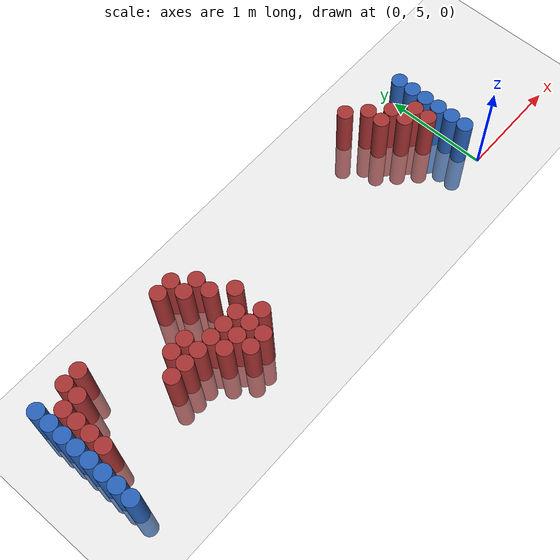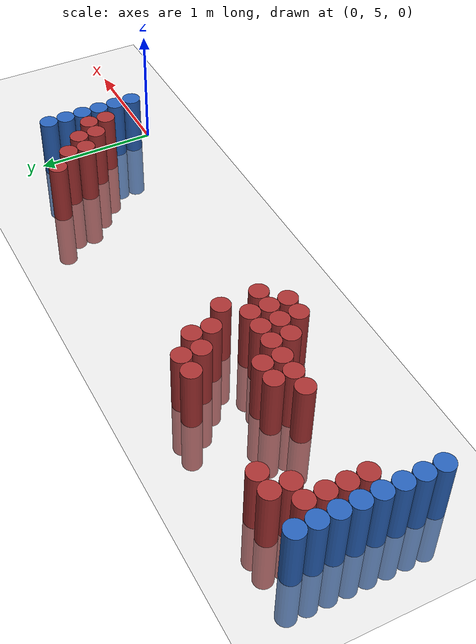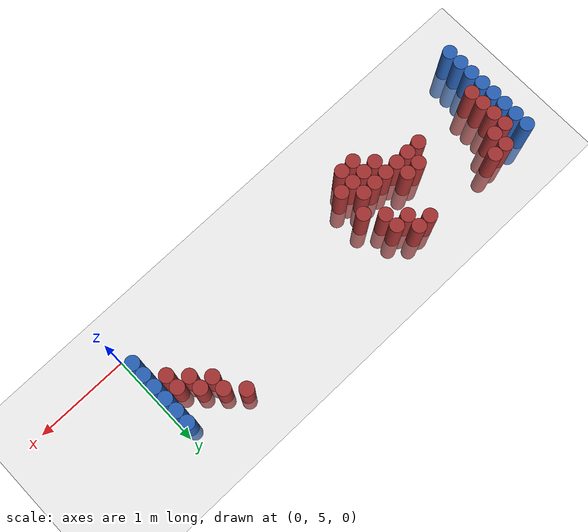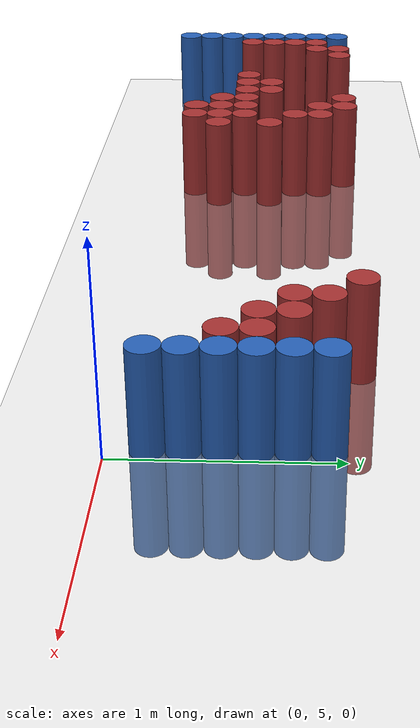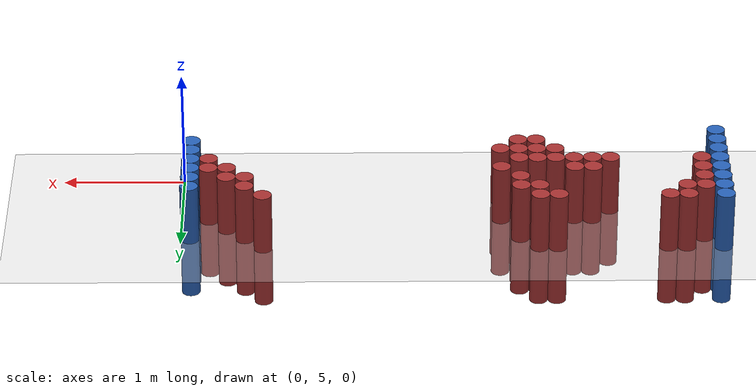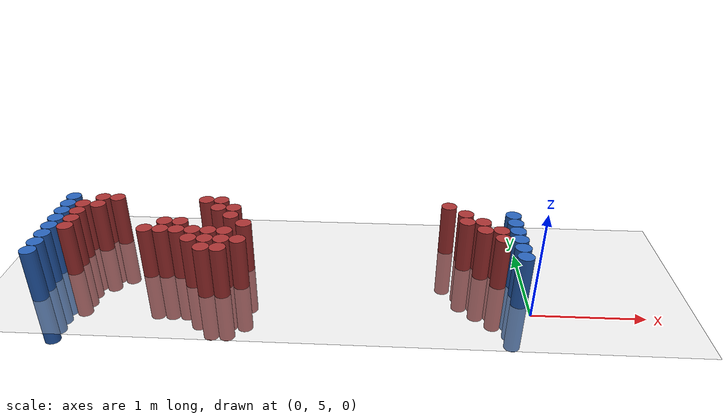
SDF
<sdf version="1.6">
 <world name="default">
  <model name="ground_plane">
   <static>1</static>
   <link name="link">
    <collision name="collision">
     <geometry><plane><normal>0 0 1</normal><size>100 100</size></plane></geometry>
     <surface><friction><ode><mu>100</mu><mu2>50</mu2></ode></friction></surface>
    </collision>
    <visual name="visual">
     <cast_shadows>0</cast_shadows>
     <geometry><plane><normal>0 0 1</normal><size>100 100</size></plane></geometry>
     <material>
      <script><uri>file://media/materials/scripts/gazebo.material</uri><name>Gazebo/Grey</name></script>
     </material>
    </visual>
   </link>
  </model>
  <model name="unit_cylinder_95">
   <static>1</static>
   <pose>-4.425000 5.025000 0.000000 0.000000 0.000000 0.000000</pose>
   <link name="link">
    <inertial>
     <mass>1</mass>
     <inertia><ixx>0.145833</ixx><ixy>0</ixy><ixz>0</ixz><iyy>0.145833</iyy><iyz>0</iyz><izz>0.125</izz></inertia>
    </inertial>
    <collision name="collision">
     <geometry><cylinder><radius>0.075000</radius><length>1</length></cylinder></geometry>
    </collision>
    <visual name="visual">
     <geometry><cylinder><radius>0.075000</radius><length>1</length></cylinder></geometry>
     <material>
      <ambient>0.152000 0.379000 0.720000 1</ambient>
      <diffuse>0.152000 0.379000 0.720000 1</diffuse>
     </material>
     <material>
      <script><name>Gazebo/Grey</name><uri>file://media/materials/scripts/gazebo.material</uri></script>
     </material>
    </visual>
   </link>
  </model>
  <model name="unit_cylinder_96">
   <static>1</static>
   <pose>-4.425000 5.175000 0.000000 0.000000 0.000000 0.000000</pose>
   <link name="link">
    <inertial>
     <mass>1</mass>
     <inertia><ixx>0.145833</ixx><ixy>0</ixy><ixz>0</ixz><iyy>0.145833</iyy><iyz>0</iyz><izz>0.125</izz></inertia>
    </inertial>
    <collision name="collision">
     <geometry><cylinder><radius>0.075000</radius><length>1</length></cylinder></geometry>
    </collision>
    <visual name="visual">
     <geometry><cylinder><radius>0.075000</radius><length>1</length></cylinder></geometry>
     <material>
      <ambient>0.152000 0.379000 0.720000 1</ambient>
      <diffuse>0.152000 0.379000 0.720000 1</diffuse>
     </material>
     <material>
      <script><name>Gazebo/Grey</name><uri>file://media/materials/scripts/gazebo.material</uri></script>
     </material>
    </visual>
   </link>
  </model>
  <model name="unit_cylinder_97">
   <static>1</static>
   <pose>-4.425000 5.325000 0.000000 0.000000 0.000000 0.000000</pose>
   <link name="link">
    <inertial>
     <mass>1</mass>
     <inertia><ixx>0.145833</ixx><ixy>0</ixy><ixz>0</ixz><iyy>0.145833</iyy><iyz>0</iyz><izz>0.125</izz></inertia>
    </inertial>
    <collision name="collision">
     <geometry><cylinder><radius>0.075000</radius><length>1</length></cylinder></geometry>
    </collision>
    <visual name="visual">
     <geometry><cylinder><radius>0.075000</radius><length>1</length></cylinder></geometry>
     <material>
      <ambient>0.152000 0.379000 0.720000 1</ambient>
      <diffuse>0.152000 0.379000 0.720000 1</diffuse>
     </material>
     <material>
      <script><name>Gazebo/Grey</name><uri>file://media/materials/scripts/gazebo.material</uri></script>
     </material>
    </visual>
   </link>
  </model>
  <model name="unit_cylinder_98">
   <static>1</static>
   <pose>-4.425000 5.475000 0.000000 0.000000 0.000000 0.000000</pose>
   <link name="link">
    <inertial>
     <mass>1</mass>
     <inertia><ixx>0.145833</ixx><ixy>0</ixy><ixz>0</ixz><iyy>0.145833</iyy><iyz>0</iyz><izz>0.125</izz></inertia>
    </inertial>
    <collision name="collision">
     <geometry><cylinder><radius>0.075000</radius><length>1</length></cylinder></geometry>
    </collision>
    <visual name="visual">
     <geometry><cylinder><radius>0.075000</radius><length>1</length></cylinder></geometry>
     <material>
      <ambient>0.152000 0.379000 0.720000 1</ambient>
      <diffuse>0.152000 0.379000 0.720000 1</diffuse>
     </material>
     <material>
      <script><name>Gazebo/Grey</name><uri>file://media/materials/scripts/gazebo.material</uri></script>
     </material>
    </visual>
   </link>
  </model>
  <model name="unit_cylinder_99">
   <static>1</static>
   <pose>-4.425000 5.625000 0.000000 0.000000 0.000000 0.000000</pose>
   <link name="link">
    <inertial>
     <mass>1</mass>
     <inertia><ixx>0.145833</ixx><ixy>0</ixy><ixz>0</ixz><iyy>0.145833</iyy><iyz>0</iyz><izz>0.125</izz></inertia>
    </inertial>
    <collision name="collision">
     <geometry><cylinder><radius>0.075000</radius><length>1</length></cylinder></geometry>
    </collision>
    <visual name="visual">
     <geometry><cylinder><radius>0.075000</radius><length>1</length></cylinder></geometry>
     <material>
      <ambient>0.152000 0.379000 0.720000 1</ambient>
      <diffuse>0.152000 0.379000 0.720000 1</diffuse>
     </material>
     <material>
      <script><name>Gazebo/Grey</name><uri>file://media/materials/scripts/gazebo.material</uri></script>
     </material>
    </visual>
   </link>
  </model>
  <model name="unit_cylinder_100">
   <static>1</static>
   <pose>-4.425000 5.775000 0.000000 0.000000 0.000000 0.000000</pose>
   <link name="link">
    <inertial>
     <mass>1</mass>
     <inertia><ixx>0.145833</ixx><ixy>0</ixy><ixz>0</ixz><iyy>0.145833</iyy><iyz>0</iyz><izz>0.125</izz></inertia>
    </inertial>
    <collision name="collision">
     <geometry><cylinder><radius>0.075000</radius><length>1</length></cylinder></geometry>
    </collision>
    <visual name="visual">
     <geometry><cylinder><radius>0.075000</radius><length>1</length></cylinder></geometry>
     <material>
      <ambient>0.152000 0.379000 0.720000 1</ambient>
      <diffuse>0.152000 0.379000 0.720000 1</diffuse>
     </material>
     <material>
      <script><name>Gazebo/Grey</name><uri>file://media/materials/scripts/gazebo.material</uri></script>
     </material>
    </visual>
   </link>
  </model>
  <model name="unit_cylinder_101">
   <static>1</static>
   <pose>-4.425000 5.925000 0.000000 0.000000 0.000000 0.000000</pose>
   <link name="link">
    <inertial>
     <mass>1</mass>
     <inertia><ixx>0.145833</ixx><ixy>0</ixy><ixz>0</ixz><iyy>0.145833</iyy><iyz>0</iyz><izz>0.125</izz></inertia>
    </inertial>
    <collision name="collision">
     <geometry><cylinder><radius>0.075000</radius><length>1</length></cylinder></geometry>
    </collision>
    <visual name="visual">
     <geometry><cylinder><radius>0.075000</radius><length>1</length></cylinder></geometry>
     <material>
      <ambient>0.152000 0.379000 0.720000 1</ambient>
      <diffuse>0.152000 0.379000 0.720000 1</diffuse>
     </material>
     <material>
      <script><name>Gazebo/Grey</name><uri>file://media/materials/scripts/gazebo.material</uri></script>
     </material>
    </visual>
   </link>
  </model>
  <model name="unit_cylinder_102">
   <static>1</static>
   <pose>-4.425000 6.075000 0.000000 0.000000 0.000000 0.000000</pose>
   <link name="link">
    <inertial>
     <mass>1</mass>
     <inertia><ixx>0.145833</ixx><ixy>0</ixy><ixz>0</ixz><iyy>0.145833</iyy><iyz>0</iyz><izz>0.125</izz></inertia>
    </inertial>
    <collision name="collision">
     <geometry><cylinder><radius>0.075000</radius><length>1</length></cylinder></geometry>
    </collision>
    <visual name="visual">
     <geometry><cylinder><radius>0.075000</radius><length>1</length></cylinder></geometry>
     <material>
      <ambient>0.152000 0.379000 0.720000 1</ambient>
      <diffuse>0.152000 0.379000 0.720000 1</diffuse>
     </material>
     <material>
      <script><name>Gazebo/Grey</name><uri>file://media/materials/scripts/gazebo.material</uri></script>
     </material>
    </visual>
   </link>
  </model>
  <model name="unit_cylinder_126">
   <static>1</static>
   <pose>-4.275000 5.475000 0.000000 0.000000 0.000000 0.000000</pose>
   <link name="link">
    <inertial>
     <mass>1</mass>
     <inertia><ixx>0.145833</ixx><ixy>0</ixy><ixz>0</ixz><iyy>0.145833</iyy><iyz>0</iyz><izz>0.125</izz></inertia>
    </inertial>
    <collision name="collision">
     <geometry><cylinder><radius>0.075000</radius><length>1</length></cylinder></geometry>
    </collision>
    <visual name="visual">
     <geometry><cylinder><radius>0.075000</radius><length>1</length></cylinder></geometry>
     <material>
      <ambient>0.648000 0.192000 0.192000 1</ambient>
      <diffuse>0.648000 0.192000 0.192000 1</diffuse>
     </material>
     <material>
      <script><name>Gazebo/Grey</name><uri>file://media/materials/scripts/gazebo.material</uri></script>
     </material>
    </visual>
   </link>
  </model>
  <model name="unit_cylinder_127">
   <static>1</static>
   <pose>-4.275000 5.625000 0.000000 0.000000 0.000000 0.000000</pose>
   <link name="link">
    <inertial>
     <mass>1</mass>
     <inertia><ixx>0.145833</ixx><ixy>0</ixy><ixz>0</ixz><iyy>0.145833</iyy><iyz>0</iyz><izz>0.125</izz></inertia>
    </inertial>
    <collision name="collision">
     <geometry><cylinder><radius>0.075000</radius><length>1</length></cylinder></geometry>
    </collision>
    <visual name="visual">
     <geometry><cylinder><radius>0.075000</radius><length>1</length></cylinder></geometry>
     <material>
      <ambient>0.648000 0.192000 0.192000 1</ambient>
      <diffuse>0.648000 0.192000 0.192000 1</diffuse>
     </material>
     <material>
      <script><name>Gazebo/Grey</name><uri>file://media/materials/scripts/gazebo.material</uri></script>
     </material>
    </visual>
   </link>
  </model>
  <model name="unit_cylinder_128">
   <static>1</static>
   <pose>-4.275000 5.775000 0.000000 0.000000 0.000000 0.000000</pose>
   <link name="link">
    <inertial>
     <mass>1</mass>
     <inertia><ixx>0.145833</ixx><ixy>0</ixy><ixz>0</ixz><iyy>0.145833</iyy><iyz>0</iyz><izz>0.125</izz></inertia>
    </inertial>
    <collision name="collision">
     <geometry><cylinder><radius>0.075000</radius><length>1</length></cylinder></geometry>
    </collision>
    <visual name="visual">
     <geometry><cylinder><radius>0.075000</radius><length>1</length></cylinder></geometry>
     <material>
      <ambient>0.648000 0.192000 0.192000 1</ambient>
      <diffuse>0.648000 0.192000 0.192000 1</diffuse>
     </material>
     <material>
      <script><name>Gazebo/Grey</name><uri>file://media/materials/scripts/gazebo.material</uri></script>
     </material>
    </visual>
   </link>
  </model>
  <model name="unit_cylinder_129">
   <static>1</static>
   <pose>-4.275000 5.925000 0.000000 0.000000 0.000000 0.000000</pose>
   <link name="link">
    <inertial>
     <mass>1</mass>
     <inertia><ixx>0.145833</ixx><ixy>0</ixy><ixz>0</ixz><iyy>0.145833</iyy><iyz>0</iyz><izz>0.125</izz></inertia>
    </inertial>
    <collision name="collision">
     <geometry><cylinder><radius>0.075000</radius><length>1</length></cylinder></geometry>
    </collision>
    <visual name="visual">
     <geometry><cylinder><radius>0.075000</radius><length>1</length></cylinder></geometry>
     <material>
      <ambient>0.648000 0.192000 0.192000 1</ambient>
      <diffuse>0.648000 0.192000 0.192000 1</diffuse>
     </material>
     <material>
      <script><name>Gazebo/Grey</name><uri>file://media/materials/scripts/gazebo.material</uri></script>
     </material>
    </visual>
   </link>
  </model>
  <model name="unit_cylinder_140">
   <static>1</static>
   <pose>-4.125000 5.925000 0.000000 0.000000 0.000000 0.000000</pose>
   <link name="link">
    <inertial>
     <mass>1</mass>
     <inertia><ixx>0.145833</ixx><ixy>0</ixy><ixz>0</ixz><iyy>0.145833</iyy><iyz>0</iyz><izz>0.125</izz></inertia>
    </inertial>
    <collision name="collision">
     <geometry><cylinder><radius>0.075000</radius><length>1</length></cylinder></geometry>
    </collision>
    <visual name="visual">
     <geometry><cylinder><radius>0.075000</radius><length>1</length></cylinder></geometry>
     <material>
      <ambient>0.648000 0.192000 0.192000 1</ambient>
      <diffuse>0.648000 0.192000 0.192000 1</diffuse>
     </material>
     <material>
      <script><name>Gazebo/Grey</name><uri>file://media/materials/scripts/gazebo.material</uri></script>
     </material>
    </visual>
   </link>
  </model>
  <model name="unit_cylinder_141">
   <static>1</static>
   <pose>-4.125000 6.075000 0.000000 0.000000 0.000000 0.000000</pose>
   <link name="link">
    <inertial>
     <mass>1</mass>
     <inertia><ixx>0.145833</ixx><ixy>0</ixy><ixz>0</ixz><iyy>0.145833</iyy><iyz>0</iyz><izz>0.125</izz></inertia>
    </inertial>
    <collision name="collision">
     <geometry><cylinder><radius>0.075000</radius><length>1</length></cylinder></geometry>
    </collision>
    <visual name="visual">
     <geometry><cylinder><radius>0.075000</radius><length>1</length></cylinder></geometry>
     <material>
      <ambient>0.648000 0.192000 0.192000 1</ambient>
      <diffuse>0.648000 0.192000 0.192000 1</diffuse>
     </material>
     <material>
      <script><name>Gazebo/Grey</name><uri>file://media/materials/scripts/gazebo.material</uri></script>
     </material>
    </visual>
   </link>
  </model>
  <model name="unit_cylinder_147">
   <static>1</static>
   <pose>-3.975000 6.075000 0.000000 0.000000 0.000000 0.000000</pose>
   <link name="link">
    <inertial>
     <mass>1</mass>
     <inertia><ixx>0.145833</ixx><ixy>0</ixy><ixz>0</ixz><iyy>0.145833</iyy><iyz>0</iyz><izz>0.125</izz></inertia>
    </inertial>
    <collision name="collision">
     <geometry><cylinder><radius>0.075000</radius><length>1</length></cylinder></geometry>
    </collision>
    <visual name="visual">
     <geometry><cylinder><radius>0.075000</radius><length>1</length></cylinder></geometry>
     <material>
      <ambient>0.648000 0.192000 0.192000 1</ambient>
      <diffuse>0.648000 0.192000 0.192000 1</diffuse>
     </material>
     <material>
      <script><name>Gazebo/Grey</name><uri>file://media/materials/scripts/gazebo.material</uri></script>
     </material>
    </visual>
   </link>
  </model>
  <model name="unit_cylinder_170">
   <static>1</static>
   <pose>-3.525000 5.475000 0.000000 0.000000 0.000000 0.000000</pose>
   <link name="link">
    <inertial>
     <mass>1</mass>
     <inertia><ixx>0.145833</ixx><ixy>0</ixy><ixz>0</ixz><iyy>0.145833</iyy><iyz>0</iyz><izz>0.125</izz></inertia>
    </inertial>
    <collision name="collision">
     <geometry><cylinder><radius>0.075000</radius><length>1</length></cylinder></geometry>
    </collision>
    <visual name="visual">
     <geometry><cylinder><radius>0.075000</radius><length>1</length></cylinder></geometry>
     <material>
      <ambient>0.648000 0.192000 0.192000 1</ambient>
      <diffuse>0.648000 0.192000 0.192000 1</diffuse>
     </material>
     <material>
      <script><name>Gazebo/Grey</name><uri>file://media/materials/scripts/gazebo.material</uri></script>
     </material>
    </visual>
   </link>
  </model>
  <model name="unit_cylinder_176">
   <static>1</static>
   <pose>-3.375000 5.475000 0.000000 0.000000 0.000000 0.000000</pose>
   <link name="link">
    <inertial>
     <mass>1</mass>
     <inertia><ixx>0.145833</ixx><ixy>0</ixy><ixz>0</ixz><iyy>0.145833</iyy><iyz>0</iyz><izz>0.125</izz></inertia>
    </inertial>
    <collision name="collision">
     <geometry><cylinder><radius>0.075000</radius><length>1</length></cylinder></geometry>
    </collision>
    <visual name="visual">
     <geometry><cylinder><radius>0.075000</radius><length>1</length></cylinder></geometry>
     <material>
      <ambient>0.648000 0.192000 0.192000 1</ambient>
      <diffuse>0.648000 0.192000 0.192000 1</diffuse>
     </material>
     <material>
      <script><name>Gazebo/Grey</name><uri>file://media/materials/scripts/gazebo.material</uri></script>
     </material>
    </visual>
   </link>
  </model>
  <model name="unit_cylinder_177">
   <static>1</static>
   <pose>-3.375000 5.625000 0.000000 0.000000 0.000000 0.000000</pose>
   <link name="link">
    <inertial>
     <mass>1</mass>
     <inertia><ixx>0.145833</ixx><ixy>0</ixy><ixz>0</ixz><iyy>0.145833</iyy><iyz>0</iyz><izz>0.125</izz></inertia>
    </inertial>
    <collision name="collision">
     <geometry><cylinder><radius>0.075000</radius><length>1</length></cylinder></geometry>
    </collision>
    <visual name="visual">
     <geometry><cylinder><radius>0.075000</radius><length>1</length></cylinder></geometry>
     <material>
      <ambient>0.648000 0.192000 0.192000 1</ambient>
      <diffuse>0.648000 0.192000 0.192000 1</diffuse>
     </material>
     <material>
      <script><name>Gazebo/Grey</name><uri>file://media/materials/scripts/gazebo.material</uri></script>
     </material>
    </visual>
   </link>
  </model>
  <model name="unit_cylinder_185">
   <static>1</static>
   <pose>-3.225000 5.475000 0.000000 0.000000 0.000000 0.000000</pose>
   <link name="link">
    <inertial>
     <mass>1</mass>
     <inertia><ixx>0.145833</ixx><ixy>0</ixy><ixz>0</ixz><iyy>0.145833</iyy><iyz>0</iyz><izz>0.125</izz></inertia>
    </inertial>
    <collision name="collision">
     <geometry><cylinder><radius>0.075000</radius><length>1</length></cylinder></geometry>
    </collision>
    <visual name="visual">
     <geometry><cylinder><radius>0.075000</radius><length>1</length></cylinder></geometry>
     <material>
      <ambient>0.648000 0.192000 0.192000 1</ambient>
      <diffuse>0.648000 0.192000 0.192000 1</diffuse>
     </material>
     <material>
      <script><name>Gazebo/Grey</name><uri>file://media/materials/scripts/gazebo.material</uri></script>
     </material>
    </visual>
   </link>
  </model>
  <model name="unit_cylinder_186">
   <static>1</static>
   <pose>-3.225000 5.625000 0.000000 0.000000 0.000000 0.000000</pose>
   <link name="link">
    <inertial>
     <mass>1</mass>
     <inertia><ixx>0.145833</ixx><ixy>0</ixy><ixz>0</ixz><iyy>0.145833</iyy><iyz>0</iyz><izz>0.125</izz></inertia>
    </inertial>
    <collision name="collision">
     <geometry><cylinder><radius>0.075000</radius><length>1</length></cylinder></geometry>
    </collision>
    <visual name="visual">
     <geometry><cylinder><radius>0.075000</radius><length>1</length></cylinder></geometry>
     <material>
      <ambient>0.648000 0.192000 0.192000 1</ambient>
      <diffuse>0.648000 0.192000 0.192000 1</diffuse>
     </material>
     <material>
      <script><name>Gazebo/Grey</name><uri>file://media/materials/scripts/gazebo.material</uri></script>
     </material>
    </visual>
   </link>
  </model>
  <model name="unit_cylinder_192">
   <static>1</static>
   <pose>-3.075000 5.325000 0.000000 0.000000 0.000000 0.000000</pose>
   <link name="link">
    <inertial>
     <mass>1</mass>
     <inertia><ixx>0.145833</ixx><ixy>0</ixy><ixz>0</ixz><iyy>0.145833</iyy><iyz>0</iyz><izz>0.125</izz></inertia>
    </inertial>
    <collision name="collision">
     <geometry><cylinder><radius>0.075000</radius><length>1</length></cylinder></geometry>
    </collision>
    <visual name="visual">
     <geometry><cylinder><radius>0.075000</radius><length>1</length></cylinder></geometry>
     <material>
      <ambient>0.648000 0.192000 0.192000 1</ambient>
      <diffuse>0.648000 0.192000 0.192000 1</diffuse>
     </material>
     <material>
      <script><name>Gazebo/Grey</name><uri>file://media/materials/scripts/gazebo.material</uri></script>
     </material>
    </visual>
   </link>
  </model>
  <model name="unit_cylinder_193">
   <static>1</static>
   <pose>-3.075000 5.475000 0.000000 0.000000 0.000000 0.000000</pose>
   <link name="link">
    <inertial>
     <mass>1</mass>
     <inertia><ixx>0.145833</ixx><ixy>0</ixy><ixz>0</ixz><iyy>0.145833</iyy><iyz>0</iyz><izz>0.125</izz></inertia>
    </inertial>
    <collision name="collision">
     <geometry><cylinder><radius>0.075000</radius><length>1</length></cylinder></geometry>
    </collision>
    <visual name="visual">
     <geometry><cylinder><radius>0.075000</radius><length>1</length></cylinder></geometry>
     <material>
      <ambient>0.648000 0.192000 0.192000 1</ambient>
      <diffuse>0.648000 0.192000 0.192000 1</diffuse>
     </material>
     <material>
      <script><name>Gazebo/Grey</name><uri>file://media/materials/scripts/gazebo.material</uri></script>
     </material>
    </visual>
   </link>
  </model>
  <model name="unit_cylinder_194">
   <static>1</static>
   <pose>-3.075000 6.075000 0.000000 0.000000 0.000000 0.000000</pose>
   <link name="link">
    <inertial>
     <mass>1</mass>
     <inertia><ixx>0.145833</ixx><ixy>0</ixy><ixz>0</ixz><iyy>0.145833</iyy><iyz>0</iyz><izz>0.125</izz></inertia>
    </inertial>
    <collision name="collision">
     <geometry><cylinder><radius>0.075000</radius><length>1</length></cylinder></geometry>
    </collision>
    <visual name="visual">
     <geometry><cylinder><radius>0.075000</radius><length>1</length></cylinder></geometry>
     <material>
      <ambient>0.648000 0.192000 0.192000 1</ambient>
      <diffuse>0.648000 0.192000 0.192000 1</diffuse>
     </material>
     <material>
      <script><name>Gazebo/Grey</name><uri>file://media/materials/scripts/gazebo.material</uri></script>
     </material>
    </visual>
   </link>
  </model>
  <model name="unit_cylinder_198">
   <static>1</static>
   <pose>-2.925000 5.175000 0.000000 0.000000 0.000000 0.000000</pose>
   <link name="link">
    <inertial>
     <mass>1</mass>
     <inertia><ixx>0.145833</ixx><ixy>0</ixy><ixz>0</ixz><iyy>0.145833</iyy><iyz>0</iyz><izz>0.125</izz></inertia>
    </inertial>
    <collision name="collision">
     <geometry><cylinder><radius>0.075000</radius><length>1</length></cylinder></geometry>
    </collision>
    <visual name="visual">
     <geometry><cylinder><radius>0.075000</radius><length>1</length></cylinder></geometry>
     <material>
      <ambient>0.648000 0.192000 0.192000 1</ambient>
      <diffuse>0.648000 0.192000 0.192000 1</diffuse>
     </material>
     <material>
      <script><name>Gazebo/Grey</name><uri>file://media/materials/scripts/gazebo.material</uri></script>
     </material>
    </visual>
   </link>
  </model>
  <model name="unit_cylinder_199">
   <static>1</static>
   <pose>-2.925000 5.325000 0.000000 0.000000 0.000000 0.000000</pose>
   <link name="link">
    <inertial>
     <mass>1</mass>
     <inertia><ixx>0.145833</ixx><ixy>0</ixy><ixz>0</ixz><iyy>0.145833</iyy><iyz>0</iyz><izz>0.125</izz></inertia>
    </inertial>
    <collision name="collision">
     <geometry><cylinder><radius>0.075000</radius><length>1</length></cylinder></geometry>
    </collision>
    <visual name="visual">
     <geometry><cylinder><radius>0.075000</radius><length>1</length></cylinder></geometry>
     <material>
      <ambient>0.648000 0.192000 0.192000 1</ambient>
      <diffuse>0.648000 0.192000 0.192000 1</diffuse>
     </material>
     <material>
      <script><name>Gazebo/Grey</name><uri>file://media/materials/scripts/gazebo.material</uri></script>
     </material>
    </visual>
   </link>
  </model>
  <model name="unit_cylinder_200">
   <static>1</static>
   <pose>-2.925000 5.475000 0.000000 0.000000 0.000000 0.000000</pose>
   <link name="link">
    <inertial>
     <mass>1</mass>
     <inertia><ixx>0.145833</ixx><ixy>0</ixy><ixz>0</ixz><iyy>0.145833</iyy><iyz>0</iyz><izz>0.125</izz></inertia>
    </inertial>
    <collision name="collision">
     <geometry><cylinder><radius>0.075000</radius><length>1</length></cylinder></geometry>
    </collision>
    <visual name="visual">
     <geometry><cylinder><radius>0.075000</radius><length>1</length></cylinder></geometry>
     <material>
      <ambient>0.648000 0.192000 0.192000 1</ambient>
      <diffuse>0.648000 0.192000 0.192000 1</diffuse>
     </material>
     <material>
      <script><name>Gazebo/Grey</name><uri>file://media/materials/scripts/gazebo.material</uri></script>
     </material>
    </visual>
   </link>
  </model>
  <model name="unit_cylinder_201">
   <static>1</static>
   <pose>-2.925000 5.925000 0.000000 0.000000 0.000000 0.000000</pose>
   <link name="link">
    <inertial>
     <mass>1</mass>
     <inertia><ixx>0.145833</ixx><ixy>0</ixy><ixz>0</ixz><iyy>0.145833</iyy><iyz>0</iyz><izz>0.125</izz></inertia>
    </inertial>
    <collision name="collision">
     <geometry><cylinder><radius>0.075000</radius><length>1</length></cylinder></geometry>
    </collision>
    <visual name="visual">
     <geometry><cylinder><radius>0.075000</radius><length>1</length></cylinder></geometry>
     <material>
      <ambient>0.648000 0.192000 0.192000 1</ambient>
      <diffuse>0.648000 0.192000 0.192000 1</diffuse>
     </material>
     <material>
      <script><name>Gazebo/Grey</name><uri>file://media/materials/scripts/gazebo.material</uri></script>
     </material>
    </visual>
   </link>
  </model>
  <model name="unit_cylinder_202">
   <static>1</static>
   <pose>-2.925000 6.075000 0.000000 0.000000 0.000000 0.000000</pose>
   <link name="link">
    <inertial>
     <mass>1</mass>
     <inertia><ixx>0.145833</ixx><ixy>0</ixy><ixz>0</ixz><iyy>0.145833</iyy><iyz>0</iyz><izz>0.125</izz></inertia>
    </inertial>
    <collision name="collision">
     <geometry><cylinder><radius>0.075000</radius><length>1</length></cylinder></geometry>
    </collision>
    <visual name="visual">
     <geometry><cylinder><radius>0.075000</radius><length>1</length></cylinder></geometry>
     <material>
      <ambient>0.648000 0.192000 0.192000 1</ambient>
      <diffuse>0.648000 0.192000 0.192000 1</diffuse>
     </material>
     <material>
      <script><name>Gazebo/Grey</name><uri>file://media/materials/scripts/gazebo.material</uri></script>
     </material>
    </visual>
   </link>
  </model>
  <model name="unit_cylinder_208">
   <static>1</static>
   <pose>-2.775000 5.175000 0.000000 0.000000 0.000000 0.000000</pose>
   <link name="link">
    <inertial>
     <mass>1</mass>
     <inertia><ixx>0.145833</ixx><ixy>0</ixy><ixz>0</ixz><iyy>0.145833</iyy><iyz>0</iyz><izz>0.125</izz></inertia>
    </inertial>
    <collision name="collision">
     <geometry><cylinder><radius>0.075000</radius><length>1</length></cylinder></geometry>
    </collision>
    <visual name="visual">
     <geometry><cylinder><radius>0.075000</radius><length>1</length></cylinder></geometry>
     <material>
      <ambient>0.648000 0.192000 0.192000 1</ambient>
      <diffuse>0.648000 0.192000 0.192000 1</diffuse>
     </material>
     <material>
      <script><name>Gazebo/Grey</name><uri>file://media/materials/scripts/gazebo.material</uri></script>
     </material>
    </visual>
   </link>
  </model>
  <model name="unit_cylinder_209">
   <static>1</static>
   <pose>-2.775000 5.325000 0.000000 0.000000 0.000000 0.000000</pose>
   <link name="link">
    <inertial>
     <mass>1</mass>
     <inertia><ixx>0.145833</ixx><ixy>0</ixy><ixz>0</ixz><iyy>0.145833</iyy><iyz>0</iyz><izz>0.125</izz></inertia>
    </inertial>
    <collision name="collision">
     <geometry><cylinder><radius>0.075000</radius><length>1</length></cylinder></geometry>
    </collision>
    <visual name="visual">
     <geometry><cylinder><radius>0.075000</radius><length>1</length></cylinder></geometry>
     <material>
      <ambient>0.648000 0.192000 0.192000 1</ambient>
      <diffuse>0.648000 0.192000 0.192000 1</diffuse>
     </material>
     <material>
      <script><name>Gazebo/Grey</name><uri>file://media/materials/scripts/gazebo.material</uri></script>
     </material>
    </visual>
   </link>
  </model>
  <model name="unit_cylinder_210">
   <static>1</static>
   <pose>-2.775000 5.475000 0.000000 0.000000 0.000000 0.000000</pose>
   <link name="link">
    <inertial>
     <mass>1</mass>
     <inertia><ixx>0.145833</ixx><ixy>0</ixy><ixz>0</ixz><iyy>0.145833</iyy><iyz>0</iyz><izz>0.125</izz></inertia>
    </inertial>
    <collision name="collision">
     <geometry><cylinder><radius>0.075000</radius><length>1</length></cylinder></geometry>
    </collision>
    <visual name="visual">
     <geometry><cylinder><radius>0.075000</radius><length>1</length></cylinder></geometry>
     <material>
      <ambient>0.648000 0.192000 0.192000 1</ambient>
      <diffuse>0.648000 0.192000 0.192000 1</diffuse>
     </material>
     <material>
      <script><name>Gazebo/Grey</name><uri>file://media/materials/scripts/gazebo.material</uri></script>
     </material>
    </visual>
   </link>
  </model>
  <model name="unit_cylinder_211">
   <static>1</static>
   <pose>-2.775000 5.775000 0.000000 0.000000 0.000000 0.000000</pose>
   <link name="link">
    <inertial>
     <mass>1</mass>
     <inertia><ixx>0.145833</ixx><ixy>0</ixy><ixz>0</ixz><iyy>0.145833</iyy><iyz>0</iyz><izz>0.125</izz></inertia>
    </inertial>
    <collision name="collision">
     <geometry><cylinder><radius>0.075000</radius><length>1</length></cylinder></geometry>
    </collision>
    <visual name="visual">
     <geometry><cylinder><radius>0.075000</radius><length>1</length></cylinder></geometry>
     <material>
      <ambient>0.648000 0.192000 0.192000 1</ambient>
      <diffuse>0.648000 0.192000 0.192000 1</diffuse>
     </material>
     <material>
      <script><name>Gazebo/Grey</name><uri>file://media/materials/scripts/gazebo.material</uri></script>
     </material>
    </visual>
   </link>
  </model>
  <model name="unit_cylinder_212">
   <static>1</static>
   <pose>-2.775000 5.925000 0.000000 0.000000 0.000000 0.000000</pose>
   <link name="link">
    <inertial>
     <mass>1</mass>
     <inertia><ixx>0.145833</ixx><ixy>0</ixy><ixz>0</ixz><iyy>0.145833</iyy><iyz>0</iyz><izz>0.125</izz></inertia>
    </inertial>
    <collision name="collision">
     <geometry><cylinder><radius>0.075000</radius><length>1</length></cylinder></geometry>
    </collision>
    <visual name="visual">
     <geometry><cylinder><radius>0.075000</radius><length>1</length></cylinder></geometry>
     <material>
      <ambient>0.648000 0.192000 0.192000 1</ambient>
      <diffuse>0.648000 0.192000 0.192000 1</diffuse>
     </material>
     <material>
      <script><name>Gazebo/Grey</name><uri>file://media/materials/scripts/gazebo.material</uri></script>
     </material>
    </visual>
   </link>
  </model>
  <model name="unit_cylinder_217">
   <static>1</static>
   <pose>-2.625000 5.325000 0.000000 0.000000 0.000000 0.000000</pose>
   <link name="link">
    <inertial>
     <mass>1</mass>
     <inertia><ixx>0.145833</ixx><ixy>0</ixy><ixz>0</ixz><iyy>0.145833</iyy><iyz>0</iyz><izz>0.125</izz></inertia>
    </inertial>
    <collision name="collision">
     <geometry><cylinder><radius>0.075000</radius><length>1</length></cylinder></geometry>
    </collision>
    <visual name="visual">
     <geometry><cylinder><radius>0.075000</radius><length>1</length></cylinder></geometry>
     <material>
      <ambient>0.648000 0.192000 0.192000 1</ambient>
      <diffuse>0.648000 0.192000 0.192000 1</diffuse>
     </material>
     <material>
      <script><name>Gazebo/Grey</name><uri>file://media/materials/scripts/gazebo.material</uri></script>
     </material>
    </visual>
   </link>
  </model>
  <model name="unit_cylinder_218">
   <static>1</static>
   <pose>-2.625000 5.625000 0.000000 0.000000 0.000000 0.000000</pose>
   <link name="link">
    <inertial>
     <mass>1</mass>
     <inertia><ixx>0.145833</ixx><ixy>0</ixy><ixz>0</ixz><iyy>0.145833</iyy><iyz>0</iyz><izz>0.125</izz></inertia>
    </inertial>
    <collision name="collision">
     <geometry><cylinder><radius>0.075000</radius><length>1</length></cylinder></geometry>
    </collision>
    <visual name="visual">
     <geometry><cylinder><radius>0.075000</radius><length>1</length></cylinder></geometry>
     <material>
      <ambient>0.648000 0.192000 0.192000 1</ambient>
      <diffuse>0.648000 0.192000 0.192000 1</diffuse>
     </material>
     <material>
      <script><name>Gazebo/Grey</name><uri>file://media/materials/scripts/gazebo.material</uri></script>
     </material>
    </visual>
   </link>
  </model>
  <model name="unit_cylinder_264">
   <static>1</static>
   <pose>-0.675000 6.075000 0.000000 0.000000 0.000000 0.000000</pose>
   <link name="link">
    <inertial>
     <mass>1</mass>
     <inertia><ixx>0.145833</ixx><ixy>0</ixy><ixz>0</ixz><iyy>0.145833</iyy><iyz>0</iyz><izz>0.125</izz></inertia>
    </inertial>
    <collision name="collision">
     <geometry><cylinder><radius>0.075000</radius><length>1</length></cylinder></geometry>
    </collision>
    <visual name="visual">
     <geometry><cylinder><radius>0.075000</radius><length>1</length></cylinder></geometry>
     <material>
      <ambient>0.648000 0.192000 0.192000 1</ambient>
      <diffuse>0.648000 0.192000 0.192000 1</diffuse>
     </material>
     <material>
      <script><name>Gazebo/Grey</name><uri>file://media/materials/scripts/gazebo.material</uri></script>
     </material>
    </visual>
   </link>
  </model>
  <model name="unit_cylinder_274">
   <static>1</static>
   <pose>-0.525000 5.775000 0.000000 0.000000 0.000000 0.000000</pose>
   <link name="link">
    <inertial>
     <mass>1</mass>
     <inertia><ixx>0.145833</ixx><ixy>0</ixy><ixz>0</ixz><iyy>0.145833</iyy><iyz>0</iyz><izz>0.125</izz></inertia>
    </inertial>
    <collision name="collision">
     <geometry><cylinder><radius>0.075000</radius><length>1</length></cylinder></geometry>
    </collision>
    <visual name="visual">
     <geometry><cylinder><radius>0.075000</radius><length>1</length></cylinder></geometry>
     <material>
      <ambient>0.648000 0.192000 0.192000 1</ambient>
      <diffuse>0.648000 0.192000 0.192000 1</diffuse>
     </material>
     <material>
      <script><name>Gazebo/Grey</name><uri>file://media/materials/scripts/gazebo.material</uri></script>
     </material>
    </visual>
   </link>
  </model>
  <model name="unit_cylinder_275">
   <static>1</static>
   <pose>-0.525000 5.925000 0.000000 0.000000 0.000000 0.000000</pose>
   <link name="link">
    <inertial>
     <mass>1</mass>
     <inertia><ixx>0.145833</ixx><ixy>0</ixy><ixz>0</ixz><iyy>0.145833</iyy><iyz>0</iyz><izz>0.125</izz></inertia>
    </inertial>
    <collision name="collision">
     <geometry><cylinder><radius>0.075000</radius><length>1</length></cylinder></geometry>
    </collision>
    <visual name="visual">
     <geometry><cylinder><radius>0.075000</radius><length>1</length></cylinder></geometry>
     <material>
      <ambient>0.648000 0.192000 0.192000 1</ambient>
      <diffuse>0.648000 0.192000 0.192000 1</diffuse>
     </material>
     <material>
      <script><name>Gazebo/Grey</name><uri>file://media/materials/scripts/gazebo.material</uri></script>
     </material>
    </visual>
   </link>
  </model>
  <model name="unit_cylinder_282">
   <static>1</static>
   <pose>-0.375000 5.625000 0.000000 0.000000 0.000000 0.000000</pose>
   <link name="link">
    <inertial>
     <mass>1</mass>
     <inertia><ixx>0.145833</ixx><ixy>0</ixy><ixz>0</ixz><iyy>0.145833</iyy><iyz>0</iyz><izz>0.125</izz></inertia>
    </inertial>
    <collision name="collision">
     <geometry><cylinder><radius>0.075000</radius><length>1</length></cylinder></geometry>
    </collision>
    <visual name="visual">
     <geometry><cylinder><radius>0.075000</radius><length>1</length></cylinder></geometry>
     <material>
      <ambient>0.648000 0.192000 0.192000 1</ambient>
      <diffuse>0.648000 0.192000 0.192000 1</diffuse>
     </material>
     <material>
      <script><name>Gazebo/Grey</name><uri>file://media/materials/scripts/gazebo.material</uri></script>
     </material>
    </visual>
   </link>
  </model>
  <model name="unit_cylinder_283">
   <static>1</static>
   <pose>-0.375000 5.775000 0.000000 0.000000 0.000000 0.000000</pose>
   <link name="link">
    <inertial>
     <mass>1</mass>
     <inertia><ixx>0.145833</ixx><ixy>0</ixy><ixz>0</ixz><iyy>0.145833</iyy><iyz>0</iyz><izz>0.125</izz></inertia>
    </inertial>
    <collision name="collision">
     <geometry><cylinder><radius>0.075000</radius><length>1</length></cylinder></geometry>
    </collision>
    <visual name="visual">
     <geometry><cylinder><radius>0.075000</radius><length>1</length></cylinder></geometry>
     <material>
      <ambient>0.648000 0.192000 0.192000 1</ambient>
      <diffuse>0.648000 0.192000 0.192000 1</diffuse>
     </material>
     <material>
      <script><name>Gazebo/Grey</name><uri>file://media/materials/scripts/gazebo.material</uri></script>
     </material>
    </visual>
   </link>
  </model>
  <model name="unit_cylinder_288">
   <static>1</static>
   <pose>-0.225000 5.475000 0.000000 0.000000 0.000000 0.000000</pose>
   <link name="link">
    <inertial>
     <mass>1</mass>
     <inertia><ixx>0.145833</ixx><ixy>0</ixy><ixz>0</ixz><iyy>0.145833</iyy><iyz>0</iyz><izz>0.125</izz></inertia>
    </inertial>
    <collision name="collision">
     <geometry><cylinder><radius>0.075000</radius><length>1</length></cylinder></geometry>
    </collision>
    <visual name="visual">
     <geometry><cylinder><radius>0.075000</radius><length>1</length></cylinder></geometry>
     <material>
      <ambient>0.648000 0.192000 0.192000 1</ambient>
      <diffuse>0.648000 0.192000 0.192000 1</diffuse>
     </material>
     <material>
      <script><name>Gazebo/Grey</name><uri>file://media/materials/scripts/gazebo.material</uri></script>
     </material>
    </visual>
   </link>
  </model>
  <model name="unit_cylinder_289">
   <static>1</static>
   <pose>-0.225000 5.625000 0.000000 0.000000 0.000000 0.000000</pose>
   <link name="link">
    <inertial>
     <mass>1</mass>
     <inertia><ixx>0.145833</ixx><ixy>0</ixy><ixz>0</ixz><iyy>0.145833</iyy><iyz>0</iyz><izz>0.125</izz></inertia>
    </inertial>
    <collision name="collision">
     <geometry><cylinder><radius>0.075000</radius><length>1</length></cylinder></geometry>
    </collision>
    <visual name="visual">
     <geometry><cylinder><radius>0.075000</radius><length>1</length></cylinder></geometry>
     <material>
      <ambient>0.648000 0.192000 0.192000 1</ambient>
      <diffuse>0.648000 0.192000 0.192000 1</diffuse>
     </material>
     <material>
      <script><name>Gazebo/Grey</name><uri>file://media/materials/scripts/gazebo.material</uri></script>
     </material>
    </visual>
   </link>
  </model>
  <model name="unit_cylinder_304">
   <static>1</static>
   <pose>-0.075000 5.175000 0.000000 0.000000 0.000000 0.000000</pose>
   <link name="link">
    <inertial>
     <mass>1</mass>
     <inertia><ixx>0.145833</ixx><ixy>0</ixy><ixz>0</ixz><iyy>0.145833</iyy><iyz>0</iyz><izz>0.125</izz></inertia>
    </inertial>
    <collision name="collision">
     <geometry><cylinder><radius>0.075000</radius><length>1</length></cylinder></geometry>
    </collision>
    <visual name="visual">
     <geometry><cylinder><radius>0.075000</radius><length>1</length></cylinder></geometry>
     <material>
      <ambient>0.152000 0.379000 0.720000 1</ambient>
      <diffuse>0.152000 0.379000 0.720000 1</diffuse>
     </material>
     <material>
      <script><name>Gazebo/Grey</name><uri>file://media/materials/scripts/gazebo.material</uri></script>
     </material>
    </visual>
   </link>
  </model>
  <model name="unit_cylinder_305">
   <static>1</static>
   <pose>-0.075000 5.325000 0.000000 0.000000 0.000000 0.000000</pose>
   <link name="link">
    <inertial>
     <mass>1</mass>
     <inertia><ixx>0.145833</ixx><ixy>0</ixy><ixz>0</ixz><iyy>0.145833</iyy><iyz>0</iyz><izz>0.125</izz></inertia>
    </inertial>
    <collision name="collision">
     <geometry><cylinder><radius>0.075000</radius><length>1</length></cylinder></geometry>
    </collision>
    <visual name="visual">
     <geometry><cylinder><radius>0.075000</radius><length>1</length></cylinder></geometry>
     <material>
      <ambient>0.152000 0.379000 0.720000 1</ambient>
      <diffuse>0.152000 0.379000 0.720000 1</diffuse>
     </material>
     <material>
      <script><name>Gazebo/Grey</name><uri>file://media/materials/scripts/gazebo.material</uri></script>
     </material>
    </visual>
   </link>
  </model>
  <model name="unit_cylinder_306">
   <static>1</static>
   <pose>-0.075000 5.475000 0.000000 0.000000 0.000000 0.000000</pose>
   <link name="link">
    <inertial>
     <mass>1</mass>
     <inertia><ixx>0.145833</ixx><ixy>0</ixy><ixz>0</ixz><iyy>0.145833</iyy><iyz>0</iyz><izz>0.125</izz></inertia>
    </inertial>
    <collision name="collision">
     <geometry><cylinder><radius>0.075000</radius><length>1</length></cylinder></geometry>
    </collision>
    <visual name="visual">
     <geometry><cylinder><radius>0.075000</radius><length>1</length></cylinder></geometry>
     <material>
      <ambient>0.152000 0.379000 0.720000 1</ambient>
      <diffuse>0.152000 0.379000 0.720000 1</diffuse>
     </material>
     <material>
      <script><name>Gazebo/Grey</name><uri>file://media/materials/scripts/gazebo.material</uri></script>
     </material>
    </visual>
   </link>
  </model>
  <model name="unit_cylinder_307">
   <static>1</static>
   <pose>-0.075000 5.625000 0.000000 0.000000 0.000000 0.000000</pose>
   <link name="link">
    <inertial>
     <mass>1</mass>
     <inertia><ixx>0.145833</ixx><ixy>0</ixy><ixz>0</ixz><iyy>0.145833</iyy><iyz>0</iyz><izz>0.125</izz></inertia>
    </inertial>
    <collision name="collision">
     <geometry><cylinder><radius>0.075000</radius><length>1</length></cylinder></geometry>
    </collision>
    <visual name="visual">
     <geometry><cylinder><radius>0.075000</radius><length>1</length></cylinder></geometry>
     <material>
      <ambient>0.152000 0.379000 0.720000 1</ambient>
      <diffuse>0.152000 0.379000 0.720000 1</diffuse>
     </material>
     <material>
      <script><name>Gazebo/Grey</name><uri>file://media/materials/scripts/gazebo.material</uri></script>
     </material>
    </visual>
   </link>
  </model>
  <model name="unit_cylinder_308">
   <static>1</static>
   <pose>-0.075000 5.775000 0.000000 0.000000 0.000000 0.000000</pose>
   <link name="link">
    <inertial>
     <mass>1</mass>
     <inertia><ixx>0.145833</ixx><ixy>0</ixy><ixz>0</ixz><iyy>0.145833</iyy><iyz>0</iyz><izz>0.125</izz></inertia>
    </inertial>
    <collision name="collision">
     <geometry><cylinder><radius>0.075000</radius><length>1</length></cylinder></geometry>
    </collision>
    <visual name="visual">
     <geometry><cylinder><radius>0.075000</radius><length>1</length></cylinder></geometry>
     <material>
      <ambient>0.152000 0.379000 0.720000 1</ambient>
      <diffuse>0.152000 0.379000 0.720000 1</diffuse>
     </material>
     <material>
      <script><name>Gazebo/Grey</name><uri>file://media/materials/scripts/gazebo.material</uri></script>
     </material>
    </visual>
   </link>
  </model>
  <model name="unit_cylinder_309">
   <static>1</static>
   <pose>-0.075000 5.925000 0.000000 0.000000 0.000000 0.000000</pose>
   <link name="link">
    <inertial>
     <mass>1</mass>
     <inertia><ixx>0.145833</ixx><ixy>0</ixy><ixz>0</ixz><iyy>0.145833</iyy><iyz>0</iyz><izz>0.125</izz></inertia>
    </inertial>
    <collision name="collision">
     <geometry><cylinder><radius>0.075000</radius><length>1</length></cylinder></geometry>
    </collision>
    <visual name="visual">
     <geometry><cylinder><radius>0.075000</radius><length>1</length></cylinder></geometry>
     <material>
      <ambient>0.152000 0.379000 0.720000 1</ambient>
      <diffuse>0.152000 0.379000 0.720000 1</diffuse>
     </material>
     <material>
      <script><name>Gazebo/Grey</name><uri>file://media/materials/scripts/gazebo.material</uri></script>
     </material>
    </visual>
   </link>
  </model>
 </world>
</sdf>
